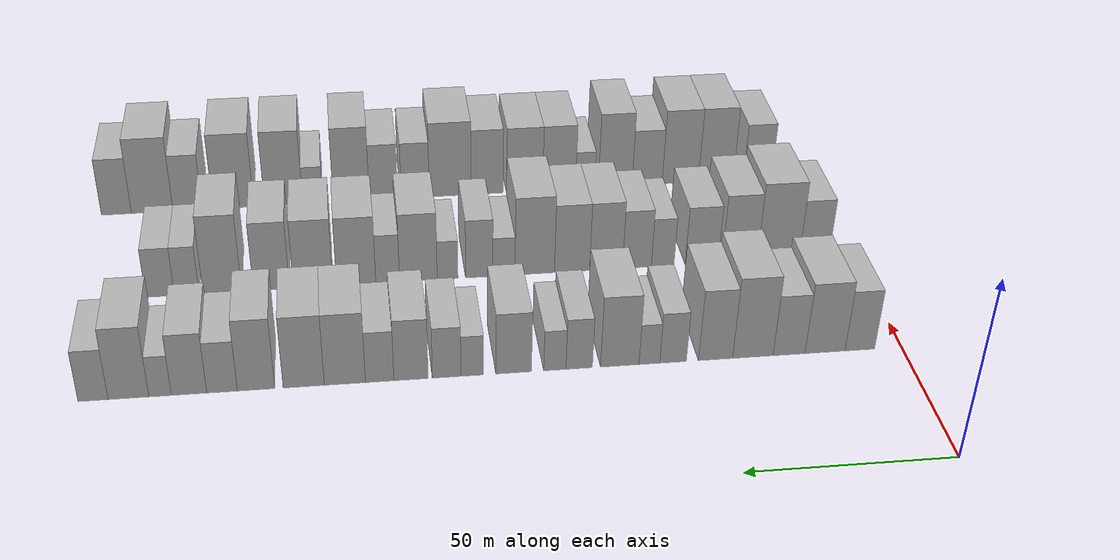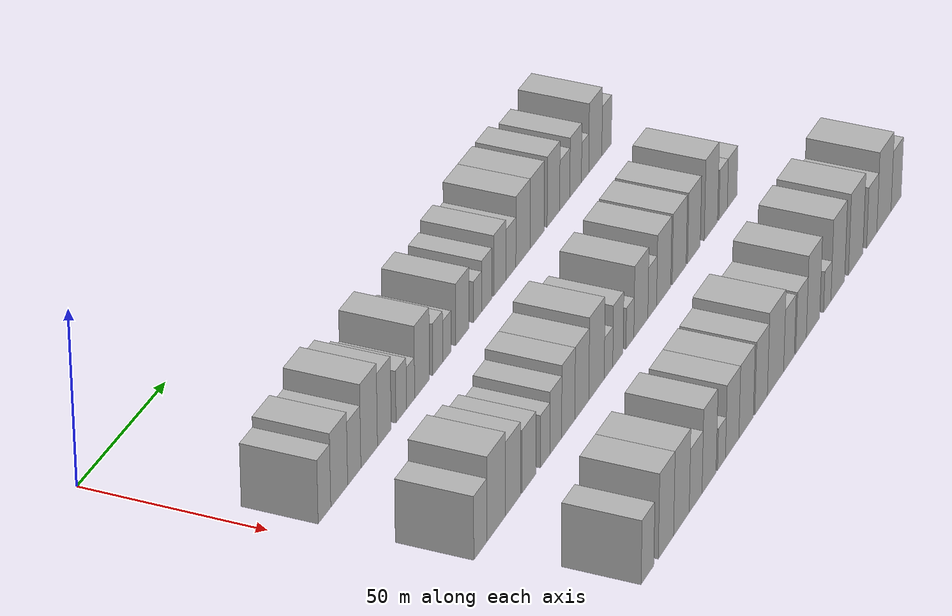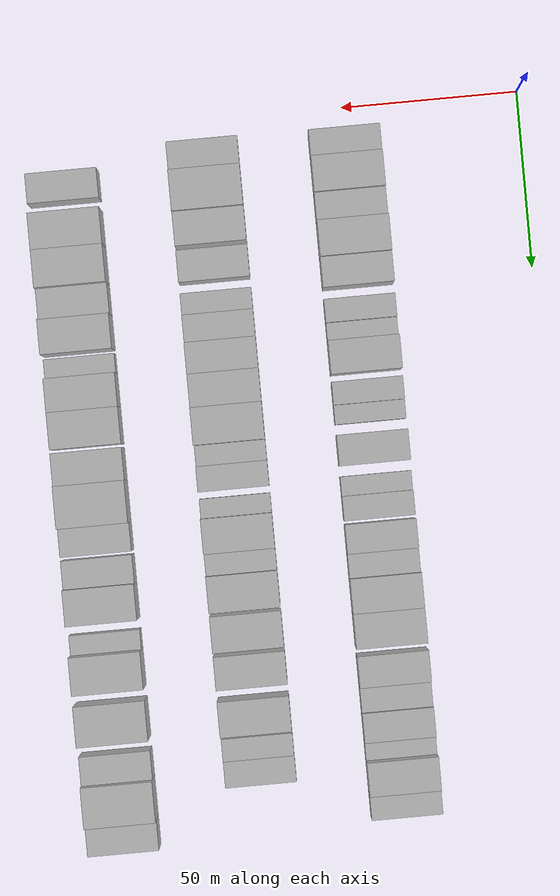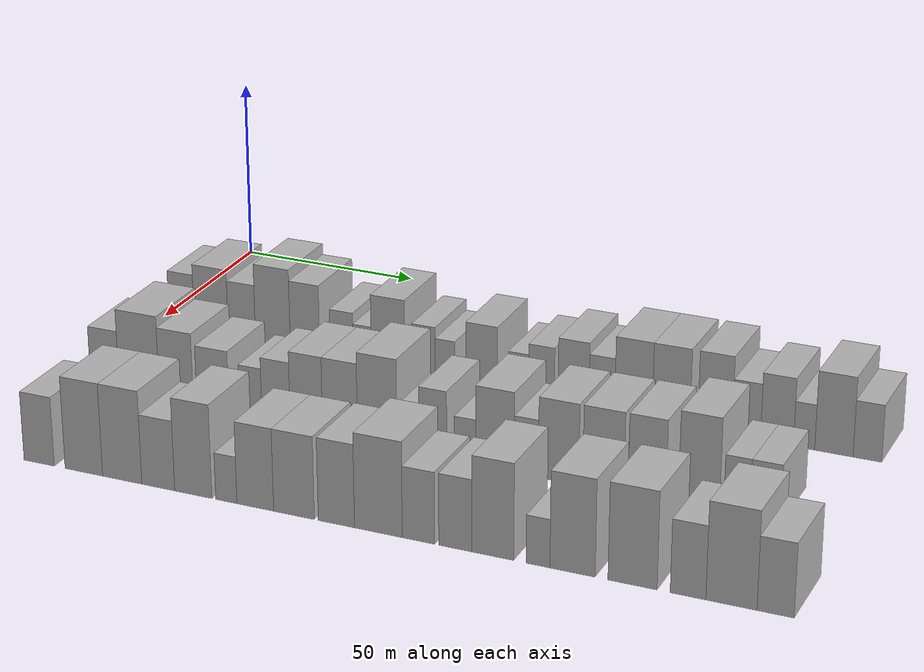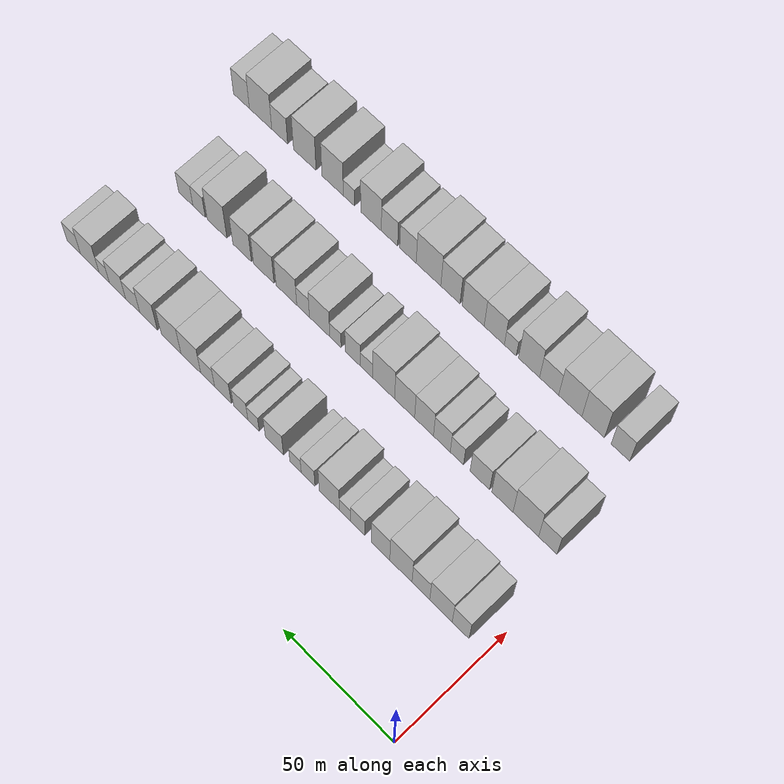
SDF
<sdf version="1.6">
 <world name="default">
  <model name="building_37">
   <static>1</static>
   <pose>50.0000 10.6920 0 0.000000 0.000000 0.000000</pose>
   <link name="link">
    <pose>0 0 9.00 0 0 0</pose>
    <collision name="collision"><geometry><box><size>20.0000 7.5236 18.0000</size></box></geometry></collision>
    <visual name="visual">
     <cast_shadows>0</cast_shadows>
     <geometry><box><size>20.0000 7.5236 18.0000</size></box></geometry>
     <material>
      <script>
       <uri>model://HANNAS_wall/materials/scripts</uri>
       <uri>model://HANNAS_wall/materials/textures</uri>
       <name>vrc/HANNAS_wall</name>
      </script>
     </material>
    </visual>
   </link>
  </model>
  <model name="building_38">
   <static>1</static>
   <pose>50.0000 19.5133 0 0.000000 0.000000 0.000000</pose>
   <link name="link">
    <pose>0 0 10.50 0 0 0</pose>
    <collision name="collision"><geometry><box><size>20.0000 10.1190 21.0000</size></box></geometry></collision>
    <visual name="visual">
     <cast_shadows>0</cast_shadows>
     <geometry><box><size>20.0000 10.1190 21.0000</size></box></geometry>
     <material>
      <script>
       <uri>model://HANNAS_wall/materials/scripts</uri>
       <uri>model://HANNAS_wall/materials/textures</uri>
       <name>vrc/HANNAS_wall</name>
      </script>
     </material>
    </visual>
   </link>
  </model>
  <model name="building_39">
   <static>1</static>
   <pose>50.0000 28.5930 0 0.000000 0.000000 0.000000</pose>
   <link name="link">
    <pose>0 0 9.00 0 0 0</pose>
    <collision name="collision"><geometry><box><size>20.0000 8.0403 18.0000</size></box></geometry></collision>
    <visual name="visual">
     <cast_shadows>0</cast_shadows>
     <geometry><box><size>20.0000 8.0403 18.0000</size></box></geometry>
     <material>
      <script>
       <uri>model://HANNAS_wall/materials/scripts</uri>
       <uri>model://HANNAS_wall/materials/textures</uri>
       <name>vrc/HANNAS_wall</name>
      </script>
     </material>
    </visual>
   </link>
  </model>
  <model name="building_40">
   <static>1</static>
   <pose>50.0000 37.6940 0 0.000000 0.000000 0.000000</pose>
   <link name="link">
    <pose>0 0 12.00 0 0 0</pose>
    <collision name="collision"><geometry><box><size>20.0000 10.1617 24.0000</size></box></geometry></collision>
    <visual name="visual">
     <cast_shadows>0</cast_shadows>
     <geometry><box><size>20.0000 10.1617 24.0000</size></box></geometry>
     <material>
      <script>
       <uri>model://HANNAS_wall/materials/scripts</uri>
       <uri>model://HANNAS_wall/materials/textures</uri>
       <name>vrc/HANNAS_wall</name>
      </script>
     </material>
    </visual>
   </link>
  </model>
  <model name="building_41">
   <static>1</static>
   <pose>50.0000 47.0424 0 0.000000 0.000000 0.000000</pose>
   <link name="link">
    <pose>0 0 10.50 0 0 0</pose>
    <collision name="collision"><geometry><box><size>20.0000 8.5351 21.0000</size></box></geometry></collision>
    <visual name="visual">
     <cast_shadows>0</cast_shadows>
     <geometry><box><size>20.0000 8.5351 21.0000</size></box></geometry>
     <material>
      <script>
       <uri>model://HANNAS_wall/materials/scripts</uri>
       <uri>model://HANNAS_wall/materials/textures</uri>
       <name>vrc/HANNAS_wall</name>
      </script>
     </material>
    </visual>
   </link>
  </model>
  <model name="building_42">
   <static>1</static>
   <pose>50.0000 57.6215 0 0.000000 0.000000 0.000000</pose>
   <link name="link">
    <pose>0 0 7.50 0 0 0</pose>
    <collision name="collision"><geometry><box><size>20.0000 6.6230 15.0000</size></box></geometry></collision>
    <visual name="visual">
     <cast_shadows>0</cast_shadows>
     <geometry><box><size>20.0000 6.6230 15.0000</size></box></geometry>
     <material>
      <script>
       <uri>model://HANNAS_wall/materials/scripts</uri>
       <uri>model://HANNAS_wall/materials/textures</uri>
       <name>vrc/HANNAS_wall</name>
      </script>
     </material>
    </visual>
   </link>
  </model>
  <model name="building_43">
   <static>1</static>
   <pose>50.0000 63.5055 0 0.000000 0.000000 0.000000</pose>
   <link name="link">
    <pose>0 0 6.00 0 0 0</pose>
    <collision name="collision"><geometry><box><size>20.0000 5.1451 12.0000</size></box></geometry></collision>
    <visual name="visual">
     <cast_shadows>0</cast_shadows>
     <geometry><box><size>20.0000 5.1451 12.0000</size></box></geometry>
     <material>
      <script>
       <uri>model://HANNAS_wall/materials/scripts</uri>
       <uri>model://HANNAS_wall/materials/textures</uri>
       <name>vrc/HANNAS_wall</name>
      </script>
     </material>
    </visual>
   </link>
  </model>
  <model name="building_44">
   <static>1</static>
   <pose>50.0000 70.8347 0 0.000000 0.000000 0.000000</pose>
   <link name="link">
    <pose>0 0 10.50 0 0 0</pose>
    <collision name="collision"><geometry><box><size>20.0000 9.5133 21.0000</size></box></geometry></collision>
    <visual name="visual">
     <cast_shadows>0</cast_shadows>
     <geometry><box><size>20.0000 9.5133 21.0000</size></box></geometry>
     <material>
      <script>
       <uri>model://HANNAS_wall/materials/scripts</uri>
       <uri>model://HANNAS_wall/materials/textures</uri>
       <name>vrc/HANNAS_wall</name>
      </script>
     </material>
    </visual>
   </link>
  </model>
  <model name="building_45">
   <static>1</static>
   <pose>50.0000 80.8474 0 0.000000 0.000000 0.000000</pose>
   <link name="link">
    <pose>0 0 7.50 0 0 0</pose>
    <collision name="collision"><geometry><box><size>20.0000 6.5121 15.0000</size></box></geometry></collision>
    <visual name="visual">
     <cast_shadows>0</cast_shadows>
     <geometry><box><size>20.0000 6.5121 15.0000</size></box></geometry>
     <material>
      <script>
       <uri>model://HANNAS_wall/materials/scripts</uri>
       <uri>model://HANNAS_wall/materials/textures</uri>
       <name>vrc/HANNAS_wall</name>
      </script>
     </material>
    </visual>
   </link>
  </model>
  <model name="building_46">
   <static>1</static>
   <pose>50.0000 86.8313 0 0.000000 0.000000 0.000000</pose>
   <link name="link">
    <pose>0 0 6.00 0 0 0</pose>
    <collision name="collision"><geometry><box><size>20.0000 5.4557 12.0000</size></box></geometry></collision>
    <visual name="visual">
     <cast_shadows>0</cast_shadows>
     <geometry><box><size>20.0000 5.4557 12.0000</size></box></geometry>
     <material>
      <script>
       <uri>model://HANNAS_wall/materials/scripts</uri>
       <uri>model://HANNAS_wall/materials/textures</uri>
       <name>vrc/HANNAS_wall</name>
      </script>
     </material>
    </visual>
   </link>
  </model>
  <model name="building_47">
   <static>1</static>
   <pose>50.0000 96.9058 0 0.000000 0.000000 0.000000</pose>
   <link name="link">
    <pose>0 0 9.00 0 0 0</pose>
    <collision name="collision"><geometry><box><size>20.0000 8.6933 18.0000</size></box></geometry></collision>
    <visual name="visual">
     <cast_shadows>0</cast_shadows>
     <geometry><box><size>20.0000 8.6933 18.0000</size></box></geometry>
     <material>
      <script>
       <uri>model://HANNAS_wall/materials/scripts</uri>
       <uri>model://HANNAS_wall/materials/textures</uri>
       <name>vrc/HANNAS_wall</name>
      </script>
     </material>
    </visual>
   </link>
  </model>
  <model name="building_48">
   <static>1</static>
   <pose>50.0000 106.9997 0 0.000000 0.000000 0.000000</pose>
   <link name="link">
    <pose>0 0 6.00 0 0 0</pose>
    <collision name="collision"><geometry><box><size>20.0000 5.4945 12.0000</size></box></geometry></collision>
    <visual name="visual">
     <cast_shadows>0</cast_shadows>
     <geometry><box><size>20.0000 5.4945 12.0000</size></box></geometry>
     <material>
      <script>
       <uri>model://HANNAS_wall/materials/scripts</uri>
       <uri>model://HANNAS_wall/materials/textures</uri>
       <name>vrc/HANNAS_wall</name>
      </script>
     </material>
    </visual>
   </link>
  </model>
  <model name="building_49">
   <static>1</static>
   <pose>50.0000 113.2223 0 0.000000 0.000000 0.000000</pose>
   <link name="link">
    <pose>0 0 7.50 0 0 0</pose>
    <collision name="collision"><geometry><box><size>20.0000 6.9508 15.0000</size></box></geometry></collision>
    <visual name="visual">
     <cast_shadows>0</cast_shadows>
     <geometry><box><size>20.0000 6.9508 15.0000</size></box></geometry>
     <material>
      <script>
       <uri>model://HANNAS_wall/materials/scripts</uri>
       <uri>model://HANNAS_wall/materials/textures</uri>
       <name>vrc/HANNAS_wall</name>
      </script>
     </material>
    </visual>
   </link>
  </model>
  <model name="building_50">
   <static>1</static>
   <pose>50.0000 121.8377 0 0.000000 0.000000 0.000000</pose>
   <link name="link">
    <pose>0 0 9.00 0 0 0</pose>
    <collision name="collision"><geometry><box><size>20.0000 8.2799 18.0000</size></box></geometry></collision>
    <visual name="visual">
     <cast_shadows>0</cast_shadows>
     <geometry><box><size>20.0000 8.2799 18.0000</size></box></geometry>
     <material>
      <script>
       <uri>model://HANNAS_wall/materials/scripts</uri>
       <uri>model://HANNAS_wall/materials/textures</uri>
       <name>vrc/HANNAS_wall</name>
      </script>
     </material>
    </visual>
   </link>
  </model>
  <model name="building_51">
   <static>1</static>
   <pose>50.0000 129.3973 0 0.000000 0.000000 0.000000</pose>
   <link name="link">
    <pose>0 0 7.50 0 0 0</pose>
    <collision name="collision"><geometry><box><size>20.0000 6.8392 15.0000</size></box></geometry></collision>
    <visual name="visual">
     <cast_shadows>0</cast_shadows>
     <geometry><box><size>20.0000 6.8392 15.0000</size></box></geometry>
     <material>
      <script>
       <uri>model://HANNAS_wall/materials/scripts</uri>
       <uri>model://HANNAS_wall/materials/textures</uri>
       <name>vrc/HANNAS_wall</name>
      </script>
     </material>
    </visual>
   </link>
  </model>
  <model name="building_52">
   <static>1</static>
   <pose>50.0000 137.7492 0 0.000000 0.000000 0.000000</pose>
   <link name="link">
    <pose>0 0 10.50 0 0 0</pose>
    <collision name="collision"><geometry><box><size>20.0000 9.8647 21.0000</size></box></geometry></collision>
    <visual name="visual">
     <cast_shadows>0</cast_shadows>
     <geometry><box><size>20.0000 9.8647 21.0000</size></box></geometry>
     <material>
      <script>
       <uri>model://HANNAS_wall/materials/scripts</uri>
       <uri>model://HANNAS_wall/materials/textures</uri>
       <name>vrc/HANNAS_wall</name>
      </script>
     </material>
    </visual>
   </link>
  </model>
  <model name="building_53">
   <static>1</static>
   <pose>50.0000 147.5961 0 0.000000 0.000000 0.000000</pose>
   <link name="link">
    <pose>0 0 10.50 0 0 0</pose>
    <collision name="collision"><geometry><box><size>20.0000 9.8291 21.0000</size></box></geometry></collision>
    <visual name="visual">
     <cast_shadows>0</cast_shadows>
     <geometry><box><size>20.0000 9.8291 21.0000</size></box></geometry>
     <material>
      <script>
       <uri>model://HANNAS_wall/materials/scripts</uri>
       <uri>model://HANNAS_wall/materials/textures</uri>
       <name>vrc/HANNAS_wall</name>
      </script>
     </material>
    </visual>
   </link>
  </model>
  <model name="building_54">
   <static>1</static>
   <pose>50.0000 158.9404 0 0.000000 0.000000 0.000000</pose>
   <link name="link">
    <pose>0 0 10.50 0 0 0</pose>
    <collision name="collision"><geometry><box><size>20.0000 8.8595 21.0000</size></box></geometry></collision>
    <visual name="visual">
     <cast_shadows>0</cast_shadows>
     <geometry><box><size>20.0000 8.8595 21.0000</size></box></geometry>
     <material>
      <script>
       <uri>model://HANNAS_wall/materials/scripts</uri>
       <uri>model://HANNAS_wall/materials/textures</uri>
       <name>vrc/HANNAS_wall</name>
      </script>
     </material>
    </visual>
   </link>
  </model>
  <model name="building_55">
   <static>1</static>
   <pose>50.0000 166.9925 0 0.000000 0.000000 0.000000</pose>
   <link name="link">
    <pose>0 0 7.50 0 0 0</pose>
    <collision name="collision"><geometry><box><size>20.0000 7.2447 15.0000</size></box></geometry></collision>
    <visual name="visual">
     <cast_shadows>0</cast_shadows>
     <geometry><box><size>20.0000 7.2447 15.0000</size></box></geometry>
     <material>
      <script>
       <uri>model://HANNAS_wall/materials/scripts</uri>
       <uri>model://HANNAS_wall/materials/textures</uri>
       <name>vrc/HANNAS_wall</name>
      </script>
     </material>
    </visual>
   </link>
  </model>
  <model name="building_56">
   <static>1</static>
   <pose>50.0000 174.7894 0 0.000000 0.000000 0.000000</pose>
   <link name="link">
    <pose>0 0 9.00 0 0 0</pose>
    <collision name="collision"><geometry><box><size>20.0000 8.3490 18.0000</size></box></geometry></collision>
    <visual name="visual">
     <cast_shadows>0</cast_shadows>
     <geometry><box><size>20.0000 8.3490 18.0000</size></box></geometry>
     <material>
      <script>
       <uri>model://HANNAS_wall/materials/scripts</uri>
       <uri>model://HANNAS_wall/materials/textures</uri>
       <name>vrc/HANNAS_wall</name>
      </script>
     </material>
    </visual>
   </link>
  </model>
  <model name="building_57">
   <static>1</static>
   <pose>50.0000 181.6091 0 0.000000 0.000000 0.000000</pose>
   <link name="link">
    <pose>0 0 6.00 0 0 0</pose>
    <collision name="collision"><geometry><box><size>20.0000 5.2904 12.0000</size></box></geometry></collision>
    <visual name="visual">
     <cast_shadows>0</cast_shadows>
     <geometry><box><size>20.0000 5.2904 12.0000</size></box></geometry>
     <material>
      <script>
       <uri>model://HANNAS_wall/materials/scripts</uri>
       <uri>model://HANNAS_wall/materials/textures</uri>
       <name>vrc/HANNAS_wall</name>
      </script>
     </material>
    </visual>
   </link>
  </model>
  <model name="building_58">
   <static>1</static>
   <pose>50.0000 189.0244 0 0.000000 0.000000 0.000000</pose>
   <link name="link">
    <pose>0 0 10.50 0 0 0</pose>
    <collision name="collision"><geometry><box><size>20.0000 9.5402 21.0000</size></box></geometry></collision>
    <visual name="visual">
     <cast_shadows>0</cast_shadows>
     <geometry><box><size>20.0000 9.5402 21.0000</size></box></geometry>
     <material>
      <script>
       <uri>model://HANNAS_wall/materials/scripts</uri>
       <uri>model://HANNAS_wall/materials/textures</uri>
       <name>vrc/HANNAS_wall</name>
      </script>
     </material>
    </visual>
   </link>
  </model>
  <model name="building_59">
   <static>1</static>
   <pose>50.0000 197.3188 0 0.000000 0.000000 0.000000</pose>
   <link name="link">
    <pose>0 0 7.50 0 0 0</pose>
    <collision name="collision"><geometry><box><size>20.0000 7.0486 15.0000</size></box></geometry></collision>
    <visual name="visual">
     <cast_shadows>0</cast_shadows>
     <geometry><box><size>20.0000 7.0486 15.0000</size></box></geometry>
     <material>
      <script>
       <uri>model://HANNAS_wall/materials/scripts</uri>
       <uri>model://HANNAS_wall/materials/textures</uri>
       <name>vrc/HANNAS_wall</name>
      </script>
     </material>
    </visual>
   </link>
  </model>
  <model name="building_128">
   <static>1</static>
   <pose>90.0000 10.7835 0 0.000000 0.000000 0.000000</pose>
   <link name="link">
    <pose>0 0 9.00 0 0 0</pose>
    <collision name="collision"><geometry><box><size>20.0000 8.2367 18.0000</size></box></geometry></collision>
    <visual name="visual">
     <cast_shadows>0</cast_shadows>
     <geometry><box><size>20.0000 8.2367 18.0000</size></box></geometry>
     <material>
      <script>
       <uri>model://HANNAS_wall/materials/scripts</uri>
       <uri>model://HANNAS_wall/materials/textures</uri>
       <name>vrc/HANNAS_wall</name>
      </script>
     </material>
    </visual>
   </link>
  </model>
  <model name="building_129">
   <static>1</static>
   <pose>90.0000 20.6794 0 0.000000 0.000000 0.000000</pose>
   <link name="link">
    <pose>0 0 12.00 0 0 0</pose>
    <collision name="collision"><geometry><box><size>20.0000 11.5550 24.0000</size></box></geometry></collision>
    <visual name="visual">
     <cast_shadows>0</cast_shadows>
     <geometry><box><size>20.0000 11.5550 24.0000</size></box></geometry>
     <material>
      <script>
       <uri>model://HANNAS_wall/materials/scripts</uri>
       <uri>model://HANNAS_wall/materials/textures</uri>
       <name>vrc/HANNAS_wall</name>
      </script>
     </material>
    </visual>
   </link>
  </model>
  <model name="building_130">
   <static>1</static>
   <pose>90.0000 31.2658 0 0.000000 0.000000 0.000000</pose>
   <link name="link">
    <pose>0 0 10.50 0 0 0</pose>
    <collision name="collision"><geometry><box><size>20.0000 9.6179 21.0000</size></box></geometry></collision>
    <visual name="visual">
     <cast_shadows>0</cast_shadows>
     <geometry><box><size>20.0000 9.6179 21.0000</size></box></geometry>
     <material>
      <script>
       <uri>model://HANNAS_wall/materials/scripts</uri>
       <uri>model://HANNAS_wall/materials/textures</uri>
       <name>vrc/HANNAS_wall</name>
      </script>
     </material>
    </visual>
   </link>
  </model>
  <model name="building_131">
   <static>1</static>
   <pose>90.0000 41.5630 0 0.000000 0.000000 0.000000</pose>
   <link name="link">
    <pose>0 0 9.00 0 0 0</pose>
    <collision name="collision"><geometry><box><size>20.0000 8.9763 18.0000</size></box></geometry></collision>
    <visual name="visual">
     <cast_shadows>0</cast_shadows>
     <geometry><box><size>20.0000 8.9763 18.0000</size></box></geometry>
     <material>
      <script>
       <uri>model://HANNAS_wall/materials/scripts</uri>
       <uri>model://HANNAS_wall/materials/textures</uri>
       <name>vrc/HANNAS_wall</name>
      </script>
     </material>
    </visual>
   </link>
  </model>
  <model name="building_132">
   <static>1</static>
   <pose>90.0000 52.1231 0 0.000000 0.000000 0.000000</pose>
   <link name="link">
    <pose>0 0 7.50 0 0 0</pose>
    <collision name="collision"><geometry><box><size>20.0000 6.1440 15.0000</size></box></geometry></collision>
    <visual name="visual">
     <cast_shadows>0</cast_shadows>
     <geometry><box><size>20.0000 6.1440 15.0000</size></box></geometry>
     <material>
      <script>
       <uri>model://HANNAS_wall/materials/scripts</uri>
       <uri>model://HANNAS_wall/materials/textures</uri>
       <name>vrc/HANNAS_wall</name>
      </script>
     </material>
    </visual>
   </link>
  </model>
  <model name="building_133">
   <static>1</static>
   <pose>90.0000 59.0881 0 0.000000 0.000000 0.000000</pose>
   <link name="link">
    <pose>0 0 9.00 0 0 0</pose>
    <collision name="collision"><geometry><box><size>20.0000 7.7861 18.0000</size></box></geometry></collision>
    <visual name="visual">
     <cast_shadows>0</cast_shadows>
     <geometry><box><size>20.0000 7.7861 18.0000</size></box></geometry>
     <material>
      <script>
       <uri>model://HANNAS_wall/materials/scripts</uri>
       <uri>model://HANNAS_wall/materials/textures</uri>
       <name>vrc/HANNAS_wall</name>
      </script>
     </material>
    </visual>
   </link>
  </model>
  <model name="building_134">
   <static>1</static>
   <pose>90.0000 67.4034 0 0.000000 0.000000 0.000000</pose>
   <link name="link">
    <pose>0 0 10.50 0 0 0</pose>
    <collision name="collision"><geometry><box><size>20.0000 8.8444 21.0000</size></box></geometry></collision>
    <visual name="visual">
     <cast_shadows>0</cast_shadows>
     <geometry><box><size>20.0000 8.8444 21.0000</size></box></geometry>
     <material>
      <script>
       <uri>model://HANNAS_wall/materials/scripts</uri>
       <uri>model://HANNAS_wall/materials/textures</uri>
       <name>vrc/HANNAS_wall</name>
      </script>
     </material>
    </visual>
   </link>
  </model>
  <model name="building_135">
   <static>1</static>
   <pose>90.0000 76.5357 0 0.000000 0.000000 0.000000</pose>
   <link name="link">
    <pose>0 0 10.50 0 0 0</pose>
    <collision name="collision"><geometry><box><size>20.0000 9.4202 21.0000</size></box></geometry></collision>
    <visual name="visual">
     <cast_shadows>0</cast_shadows>
     <geometry><box><size>20.0000 9.4202 21.0000</size></box></geometry>
     <material>
      <script>
       <uri>model://HANNAS_wall/materials/scripts</uri>
       <uri>model://HANNAS_wall/materials/textures</uri>
       <name>vrc/HANNAS_wall</name>
      </script>
     </material>
    </visual>
   </link>
  </model>
  <model name="building_136">
   <static>1</static>
   <pose>90.0000 86.5096 0 0.000000 0.000000 0.000000</pose>
   <link name="link">
    <pose>0 0 12.00 0 0 0</pose>
    <collision name="collision"><geometry><box><size>20.0000 10.5277 24.0000</size></box></geometry></collision>
    <visual name="visual">
     <cast_shadows>0</cast_shadows>
     <geometry><box><size>20.0000 10.5277 24.0000</size></box></geometry>
     <material>
      <script>
       <uri>model://HANNAS_wall/materials/scripts</uri>
       <uri>model://HANNAS_wall/materials/textures</uri>
       <name>vrc/HANNAS_wall</name>
      </script>
     </material>
    </visual>
   </link>
  </model>
  <model name="building_137">
   <static>1</static>
   <pose>90.0000 94.7152 0 0.000000 0.000000 0.000000</pose>
   <link name="link">
    <pose>0 0 6.00 0 0 0</pose>
    <collision name="collision"><geometry><box><size>20.0000 5.8833 12.0000</size></box></geometry></collision>
    <visual name="visual">
     <cast_shadows>0</cast_shadows>
     <geometry><box><size>20.0000 5.8833 12.0000</size></box></geometry>
     <material>
      <script>
       <uri>model://HANNAS_wall/materials/scripts</uri>
       <uri>model://HANNAS_wall/materials/textures</uri>
       <name>vrc/HANNAS_wall</name>
      </script>
     </material>
    </visual>
   </link>
  </model>
  <model name="building_138">
   <static>1</static>
   <pose>90.0000 101.2588 0 0.000000 0.000000 0.000000</pose>
   <link name="link">
    <pose>0 0 9.00 0 0 0</pose>
    <collision name="collision"><geometry><box><size>20.0000 7.2041 18.0000</size></box></geometry></collision>
    <visual name="visual">
     <cast_shadows>0</cast_shadows>
     <geometry><box><size>20.0000 7.2041 18.0000</size></box></geometry>
     <material>
      <script>
       <uri>model://HANNAS_wall/materials/scripts</uri>
       <uri>model://HANNAS_wall/materials/textures</uri>
       <name>vrc/HANNAS_wall</name>
      </script>
     </material>
    </visual>
   </link>
  </model>
  <model name="building_139">
   <static>1</static>
   <pose>90.0000 109.6151 0 0.000000 0.000000 0.000000</pose>
   <link name="link">
    <pose>0 0 6.00 0 0 0</pose>
    <collision name="collision"><geometry><box><size>20.0000 5.5085 12.0000</size></box></geometry></collision>
    <visual name="visual">
     <cast_shadows>0</cast_shadows>
     <geometry><box><size>20.0000 5.5085 12.0000</size></box></geometry>
     <material>
      <script>
       <uri>model://HANNAS_wall/materials/scripts</uri>
       <uri>model://HANNAS_wall/materials/textures</uri>
       <name>vrc/HANNAS_wall</name>
      </script>
     </material>
    </visual>
   </link>
  </model>
  <model name="building_140">
   <static>1</static>
   <pose>90.0000 117.3309 0 0.000000 0.000000 0.000000</pose>
   <link name="link">
    <pose>0 0 10.50 0 0 0</pose>
    <collision name="collision"><geometry><box><size>20.0000 9.9231 21.0000</size></box></geometry></collision>
    <visual name="visual">
     <cast_shadows>0</cast_shadows>
     <geometry><box><size>20.0000 9.9231 21.0000</size></box></geometry>
     <material>
      <script>
       <uri>model://HANNAS_wall/materials/scripts</uri>
       <uri>model://HANNAS_wall/materials/textures</uri>
       <name>vrc/HANNAS_wall</name>
      </script>
     </material>
    </visual>
   </link>
  </model>
  <model name="building_141">
   <static>1</static>
   <pose>90.0000 125.3951 0 0.000000 0.000000 0.000000</pose>
   <link name="link">
    <pose>0 0 7.50 0 0 0</pose>
    <collision name="collision"><geometry><box><size>20.0000 6.2052 15.0000</size></box></geometry></collision>
    <visual name="visual">
     <cast_shadows>0</cast_shadows>
     <geometry><box><size>20.0000 6.2052 15.0000</size></box></geometry>
     <material>
      <script>
       <uri>model://HANNAS_wall/materials/scripts</uri>
       <uri>model://HANNAS_wall/materials/textures</uri>
       <name>vrc/HANNAS_wall</name>
      </script>
     </material>
    </visual>
   </link>
  </model>
  <model name="building_142">
   <static>1</static>
   <pose>90.0000 133.6119 0 0.000000 0.000000 0.000000</pose>
   <link name="link">
    <pose>0 0 10.50 0 0 0</pose>
    <collision name="collision"><geometry><box><size>20.0000 10.2285 21.0000</size></box></geometry></collision>
    <visual name="visual">
     <cast_shadows>0</cast_shadows>
     <geometry><box><size>20.0000 10.2285 21.0000</size></box></geometry>
     <material>
      <script>
       <uri>model://HANNAS_wall/materials/scripts</uri>
       <uri>model://HANNAS_wall/materials/textures</uri>
       <name>vrc/HANNAS_wall</name>
      </script>
     </material>
    </visual>
   </link>
  </model>
  <model name="building_143">
   <static>1</static>
   <pose>90.0000 144.8602 0 0.000000 0.000000 0.000000</pose>
   <link name="link">
    <pose>0 0 10.50 0 0 0</pose>
    <collision name="collision"><geometry><box><size>20.0000 10.2680 21.0000</size></box></geometry></collision>
    <visual name="visual">
     <cast_shadows>0</cast_shadows>
     <geometry><box><size>20.0000 10.2680 21.0000</size></box></geometry>
     <material>
      <script>
       <uri>model://HANNAS_wall/materials/scripts</uri>
       <uri>model://HANNAS_wall/materials/textures</uri>
       <name>vrc/HANNAS_wall</name>
      </script>
     </material>
    </visual>
   </link>
  </model>
  <model name="building_144">
   <static>1</static>
   <pose>90.0000 155.6829 0 0.000000 0.000000 0.000000</pose>
   <link name="link">
    <pose>0 0 10.50 0 0 0</pose>
    <collision name="collision"><geometry><box><size>20.0000 9.3774 21.0000</size></box></geometry></collision>
    <visual name="visual">
     <cast_shadows>0</cast_shadows>
     <geometry><box><size>20.0000 9.3774 21.0000</size></box></geometry>
     <material>
      <script>
       <uri>model://HANNAS_wall/materials/scripts</uri>
       <uri>model://HANNAS_wall/materials/textures</uri>
       <name>vrc/HANNAS_wall</name>
      </script>
     </material>
    </visual>
   </link>
  </model>
  <model name="building_145">
   <static>1</static>
   <pose>90.0000 168.3654 0 0.000000 0.000000 0.000000</pose>
   <link name="link">
    <pose>0 0 12.00 0 0 0</pose>
    <collision name="collision"><geometry><box><size>20.0000 9.9875 24.0000</size></box></geometry></collision>
    <visual name="visual">
     <cast_shadows>0</cast_shadows>
     <geometry><box><size>20.0000 9.9875 24.0000</size></box></geometry>
     <material>
      <script>
       <uri>model://HANNAS_wall/materials/scripts</uri>
       <uri>model://HANNAS_wall/materials/textures</uri>
       <name>vrc/HANNAS_wall</name>
      </script>
     </material>
    </visual>
   </link>
  </model>
  <model name="building_146">
   <static>1</static>
   <pose>90.0000 177.5358 0 0.000000 0.000000 0.000000</pose>
   <link name="link">
    <pose>0 0 7.50 0 0 0</pose>
    <collision name="collision"><geometry><box><size>20.0000 6.3533 15.0000</size></box></geometry></collision>
    <visual name="visual">
     <cast_shadows>0</cast_shadows>
     <geometry><box><size>20.0000 6.3533 15.0000</size></box></geometry>
     <material>
      <script>
       <uri>model://HANNAS_wall/materials/scripts</uri>
       <uri>model://HANNAS_wall/materials/textures</uri>
       <name>vrc/HANNAS_wall</name>
      </script>
     </material>
    </visual>
   </link>
  </model>
  <model name="building_147">
   <static>1</static>
   <pose>90.0000 184.3790 0 0.000000 0.000000 0.000000</pose>
   <link name="link">
    <pose>0 0 7.50 0 0 0</pose>
    <collision name="collision"><geometry><box><size>20.0000 7.3332 15.0000</size></box></geometry></collision>
    <visual name="visual">
     <cast_shadows>0</cast_shadows>
     <geometry><box><size>20.0000 7.3332 15.0000</size></box></geometry>
     <material>
      <script>
       <uri>model://HANNAS_wall/materials/scripts</uri>
       <uri>model://HANNAS_wall/materials/textures</uri>
       <name>vrc/HANNAS_wall</name>
      </script>
     </material>
    </visual>
   </link>
  </model>
  <model name="building_210">
   <static>1</static>
   <pose>130.0000 16.1295 0 0.000000 0.000000 0.000000</pose>
   <link name="link">
    <pose>0 0 9.00 0 0 0</pose>
    <collision name="collision"><geometry><box><size>20.0000 8.3863 18.0000</size></box></geometry></collision>
    <visual name="visual">
     <cast_shadows>0</cast_shadows>
     <geometry><box><size>20.0000 8.3863 18.0000</size></box></geometry>
     <material>
      <script>
       <uri>model://HANNAS_wall/materials/scripts</uri>
       <uri>model://HANNAS_wall/materials/textures</uri>
       <name>vrc/HANNAS_wall</name>
      </script>
     </material>
    </visual>
   </link>
  </model>
  <model name="building_211">
   <static>1</static>
   <pose>130.0000 28.4509 0 0.000000 0.000000 0.000000</pose>
   <link name="link">
    <pose>0 0 12.00 0 0 0</pose>
    <collision name="collision"><geometry><box><size>20.0000 10.2564 24.0000</size></box></geometry></collision>
    <visual name="visual">
     <cast_shadows>0</cast_shadows>
     <geometry><box><size>20.0000 10.2564 24.0000</size></box></geometry>
     <material>
      <script>
       <uri>model://HANNAS_wall/materials/scripts</uri>
       <uri>model://HANNAS_wall/materials/textures</uri>
       <name>vrc/HANNAS_wall</name>
      </script>
     </material>
    </visual>
   </link>
  </model>
  <model name="building_212">
   <static>1</static>
   <pose>130.0000 38.8897 0 0.000000 0.000000 0.000000</pose>
   <link name="link">
    <pose>0 0 12.00 0 0 0</pose>
    <collision name="collision"><geometry><box><size>20.0000 10.6213 24.0000</size></box></geometry></collision>
    <visual name="visual">
     <cast_shadows>0</cast_shadows>
     <geometry><box><size>20.0000 10.6213 24.0000</size></box></geometry>
     <material>
      <script>
       <uri>model://HANNAS_wall/materials/scripts</uri>
       <uri>model://HANNAS_wall/materials/textures</uri>
       <name>vrc/HANNAS_wall</name>
      </script>
     </material>
    </visual>
   </link>
  </model>
  <model name="building_213">
   <static>1</static>
   <pose>130.0000 48.5964 0 0.000000 0.000000 0.000000</pose>
   <link name="link">
    <pose>0 0 9.00 0 0 0</pose>
    <collision name="collision"><geometry><box><size>20.0000 8.7921 18.0000</size></box></geometry></collision>
    <visual name="visual">
     <cast_shadows>0</cast_shadows>
     <geometry><box><size>20.0000 8.7921 18.0000</size></box></geometry>
     <material>
      <script>
       <uri>model://HANNAS_wall/materials/scripts</uri>
       <uri>model://HANNAS_wall/materials/textures</uri>
       <name>vrc/HANNAS_wall</name>
      </script>
     </material>
    </visual>
   </link>
  </model>
  <model name="building_214">
   <static>1</static>
   <pose>130.0000 57.9125 0 0.000000 0.000000 0.000000</pose>
   <link name="link">
    <pose>0 0 12.00 0 0 0</pose>
    <collision name="collision"><geometry><box><size>20.0000 9.8400 24.0000</size></box></geometry></collision>
    <visual name="visual">
     <cast_shadows>0</cast_shadows>
     <geometry><box><size>20.0000 9.8400 24.0000</size></box></geometry>
     <material>
      <script>
       <uri>model://HANNAS_wall/materials/scripts</uri>
       <uri>model://HANNAS_wall/materials/textures</uri>
       <name>vrc/HANNAS_wall</name>
      </script>
     </material>
    </visual>
   </link>
  </model>
  <model name="building_215">
   <static>1</static>
   <pose>130.0000 66.6193 0 0.000000 0.000000 0.000000</pose>
   <link name="link">
    <pose>0 0 6.00 0 0 0</pose>
    <collision name="collision"><geometry><box><size>20.0000 5.5736 12.0000</size></box></geometry></collision>
    <visual name="visual">
     <cast_shadows>0</cast_shadows>
     <geometry><box><size>20.0000 5.5736 12.0000</size></box></geometry>
     <material>
      <script>
       <uri>model://HANNAS_wall/materials/scripts</uri>
       <uri>model://HANNAS_wall/materials/textures</uri>
       <name>vrc/HANNAS_wall</name>
      </script>
     </material>
    </visual>
   </link>
  </model>
  <model name="building_216">
   <static>1</static>
   <pose>130.0000 74.1657 0 0.000000 0.000000 0.000000</pose>
   <link name="link">
    <pose>0 0 10.50 0 0 0</pose>
    <collision name="collision"><geometry><box><size>20.0000 9.5190 21.0000</size></box></geometry></collision>
    <visual name="visual">
     <cast_shadows>0</cast_shadows>
     <geometry><box><size>20.0000 9.5190 21.0000</size></box></geometry>
     <material>
      <script>
       <uri>model://HANNAS_wall/materials/scripts</uri>
       <uri>model://HANNAS_wall/materials/textures</uri>
       <name>vrc/HANNAS_wall</name>
      </script>
     </material>
    </visual>
   </link>
  </model>
  <model name="building_217">
   <static>1</static>
   <pose>130.0000 84.1439 0 0.000000 0.000000 0.000000</pose>
   <link name="link">
    <pose>0 0 10.50 0 0 0</pose>
    <collision name="collision"><geometry><box><size>20.0000 10.4373 21.0000</size></box></geometry></collision>
    <visual name="visual">
     <cast_shadows>0</cast_shadows>
     <geometry><box><size>20.0000 10.4373 21.0000</size></box></geometry>
     <material>
      <script>
       <uri>model://HANNAS_wall/materials/scripts</uri>
       <uri>model://HANNAS_wall/materials/textures</uri>
       <name>vrc/HANNAS_wall</name>
      </script>
     </material>
    </visual>
   </link>
  </model>
  <model name="building_218">
   <static>1</static>
   <pose>130.0000 94.9550 0 0.000000 0.000000 0.000000</pose>
   <link name="link">
    <pose>0 0 10.50 0 0 0</pose>
    <collision name="collision"><geometry><box><size>20.0000 9.1850 21.0000</size></box></geometry></collision>
    <visual name="visual">
     <cast_shadows>0</cast_shadows>
     <geometry><box><size>20.0000 9.1850 21.0000</size></box></geometry>
     <material>
      <script>
       <uri>model://HANNAS_wall/materials/scripts</uri>
       <uri>model://HANNAS_wall/materials/textures</uri>
       <name>vrc/HANNAS_wall</name>
      </script>
     </material>
    </visual>
   </link>
  </model>
  <model name="building_219">
   <static>1</static>
   <pose>130.0000 105.5235 0 0.000000 0.000000 0.000000</pose>
   <link name="link">
    <pose>0 0 12.00 0 0 0</pose>
    <collision name="collision"><geometry><box><size>20.0000 11.9521 24.0000</size></box></geometry></collision>
    <visual name="visual">
     <cast_shadows>0</cast_shadows>
     <geometry><box><size>20.0000 11.9521 24.0000</size></box></geometry>
     <material>
      <script>
       <uri>model://HANNAS_wall/materials/scripts</uri>
       <uri>model://HANNAS_wall/materials/textures</uri>
       <name>vrc/HANNAS_wall</name>
      </script>
     </material>
    </visual>
   </link>
  </model>
  <model name="building_220">
   <static>1</static>
   <pose>130.0000 115.4989 0 0.000000 0.000000 0.000000</pose>
   <link name="link">
    <pose>0 0 9.00 0 0 0</pose>
    <collision name="collision"><geometry><box><size>20.0000 7.9988 18.0000</size></box></geometry></collision>
    <visual name="visual">
     <cast_shadows>0</cast_shadows>
     <geometry><box><size>20.0000 7.9988 18.0000</size></box></geometry>
     <material>
      <script>
       <uri>model://HANNAS_wall/materials/scripts</uri>
       <uri>model://HANNAS_wall/materials/textures</uri>
       <name>vrc/HANNAS_wall</name>
      </script>
     </material>
    </visual>
   </link>
  </model>
  <model name="building_221">
   <static>1</static>
   <pose>130.0000 124.5082 0 0.000000 0.000000 0.000000</pose>
   <link name="link">
    <pose>0 0 9.00 0 0 0</pose>
    <collision name="collision"><geometry><box><size>20.0000 8.0198 18.0000</size></box></geometry></collision>
    <visual name="visual">
     <cast_shadows>0</cast_shadows>
     <geometry><box><size>20.0000 8.0198 18.0000</size></box></geometry>
     <material>
      <script>
       <uri>model://HANNAS_wall/materials/scripts</uri>
       <uri>model://HANNAS_wall/materials/textures</uri>
       <name>vrc/HANNAS_wall</name>
      </script>
     </material>
    </visual>
   </link>
  </model>
  <model name="building_222">
   <static>1</static>
   <pose>130.0000 133.6060 0 0.000000 0.000000 0.000000</pose>
   <link name="link">
    <pose>0 0 12.00 0 0 0</pose>
    <collision name="collision"><geometry><box><size>20.0000 10.1758 24.0000</size></box></geometry></collision>
    <visual name="visual">
     <cast_shadows>0</cast_shadows>
     <geometry><box><size>20.0000 10.1758 24.0000</size></box></geometry>
     <material>
      <script>
       <uri>model://HANNAS_wall/materials/scripts</uri>
       <uri>model://HANNAS_wall/materials/textures</uri>
       <name>vrc/HANNAS_wall</name>
      </script>
     </material>
    </visual>
   </link>
  </model>
  <model name="building_223">
   <static>1</static>
   <pose>130.0000 144.5162 0 0.000000 0.000000 0.000000</pose>
   <link name="link">
    <pose>0 0 6.00 0 0 0</pose>
    <collision name="collision"><geometry><box><size>20.0000 5.6446 12.0000</size></box></geometry></collision>
    <visual name="visual">
     <cast_shadows>0</cast_shadows>
     <geometry><box><size>20.0000 5.6446 12.0000</size></box></geometry>
     <material>
      <script>
       <uri>model://HANNAS_wall/materials/scripts</uri>
       <uri>model://HANNAS_wall/materials/textures</uri>
       <name>vrc/HANNAS_wall</name>
      </script>
     </material>
    </visual>
   </link>
  </model>
  <model name="building_224">
   <static>1</static>
   <pose>130.0000 152.6779 0 0.000000 0.000000 0.000000</pose>
   <link name="link">
    <pose>0 0 12.00 0 0 0</pose>
    <collision name="collision"><geometry><box><size>20.0000 10.6788 24.0000</size></box></geometry></collision>
    <visual name="visual">
     <cast_shadows>0</cast_shadows>
     <geometry><box><size>20.0000 10.6788 24.0000</size></box></geometry>
     <material>
      <script>
       <uri>model://HANNAS_wall/materials/scripts</uri>
       <uri>model://HANNAS_wall/materials/textures</uri>
       <name>vrc/HANNAS_wall</name>
      </script>
     </material>
    </visual>
   </link>
  </model>
  <model name="building_225">
   <static>1</static>
   <pose>130.0000 166.7189 0 0.000000 0.000000 0.000000</pose>
   <link name="link">
    <pose>0 0 12.00 0 0 0</pose>
    <collision name="collision"><geometry><box><size>20.0000 11.4033 24.0000</size></box></geometry></collision>
    <visual name="visual">
     <cast_shadows>0</cast_shadows>
     <geometry><box><size>20.0000 11.4033 24.0000</size></box></geometry>
     <material>
      <script>
       <uri>model://HANNAS_wall/materials/scripts</uri>
       <uri>model://HANNAS_wall/materials/textures</uri>
       <name>vrc/HANNAS_wall</name>
      </script>
     </material>
    </visual>
   </link>
  </model>
  <model name="building_226">
   <static>1</static>
   <pose>130.0000 179.4903 0 0.000000 0.000000 0.000000</pose>
   <link name="link">
    <pose>0 0 9.00 0 0 0</pose>
    <collision name="collision"><geometry><box><size>20.0000 8.1394 18.0000</size></box></geometry></collision>
    <visual name="visual">
     <cast_shadows>0</cast_shadows>
     <geometry><box><size>20.0000 8.1394 18.0000</size></box></geometry>
     <material>
      <script>
       <uri>model://HANNAS_wall/materials/scripts</uri>
       <uri>model://HANNAS_wall/materials/textures</uri>
       <name>vrc/HANNAS_wall</name>
      </script>
     </material>
    </visual>
   </link>
  </model>
  <model name="building_227">
   <static>1</static>
   <pose>130.0000 189.3234 0 0.000000 0.000000 0.000000</pose>
   <link name="link">
    <pose>0 0 12.00 0 0 0</pose>
    <collision name="collision"><geometry><box><size>20.0000 11.5269 24.0000</size></box></geometry></collision>
    <visual name="visual">
     <cast_shadows>0</cast_shadows>
     <geometry><box><size>20.0000 11.5269 24.0000</size></box></geometry>
     <material>
      <script>
       <uri>model://HANNAS_wall/materials/scripts</uri>
       <uri>model://HANNAS_wall/materials/textures</uri>
       <name>vrc/HANNAS_wall</name>
      </script>
     </material>
    </visual>
   </link>
  </model>
  <model name="building_228">
   <static>1</static>
   <pose>130.0000 199.2264 0 0.000000 0.000000 0.000000</pose>
   <link name="link">
    <pose>0 0 9.00 0 0 0</pose>
    <collision name="collision"><geometry><box><size>20.0000 8.2789 18.0000</size></box></geometry></collision>
    <visual name="visual">
     <cast_shadows>0</cast_shadows>
     <geometry><box><size>20.0000 8.2789 18.0000</size></box></geometry>
     <material>
      <script>
       <uri>model://HANNAS_wall/materials/scripts</uri>
       <uri>model://HANNAS_wall/materials/textures</uri>
       <name>vrc/HANNAS_wall</name>
      </script>
     </material>
    </visual>
   </link>
  </model>
 </world>
</sdf>
